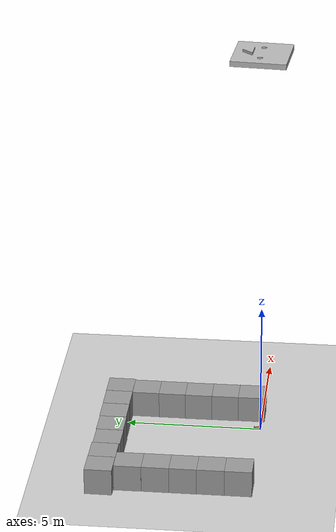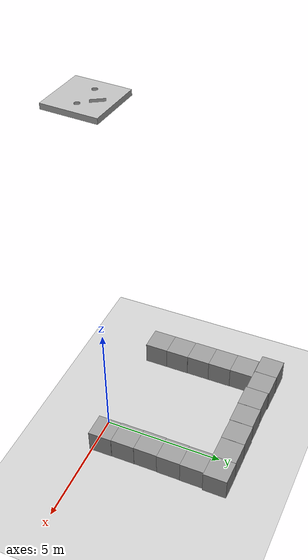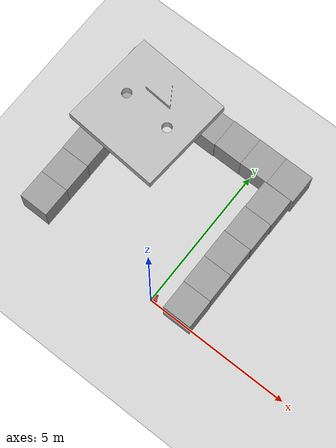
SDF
<sdf version="1.7">
 <world name="default">
  <model name="ground_plane">
   <static>1</static>
   <link name="link">
    <collision name="collision">
     <geometry><plane><normal>0 0 1</normal><size>100 100</size></plane></geometry>
     <surface>
      <contact><collide_bitmask>65535</collide_bitmask></contact>
      <friction><ode><mu>100</mu><mu2>50</mu2></ode></friction>
     </surface>
    </collision>
    <visual name="visual">
     <cast_shadows>0</cast_shadows>
     <geometry><plane><normal>0 0 1</normal><size>100 100</size></plane></geometry>
     <material>
      <script><uri>file://media/materials/scripts/gazebo.material</uri><name>Gazebo/Grey</name></script>
     </material>
    </visual>
   </link>
  </model>
  <model name="kiwi">
   <link name="base_footprint">
    <inertial>
     <pose>0 0 0.014673 0 -0 0</pose>
     <mass>1.001</mass>
     <inertia>
      <ixx>0.00250855</ixx>
      <ixy>0</ixy>
      <ixz>0</ixz>
      <iyy>0.00250855</iyy>
      <iyz>-9.94104e-10</iyz>
      <izz>0.00500042</izz>
     </inertia>
    </inertial>
    <collision name="base_footprint_fixed_joint_lump__base_link_collision">
     <pose>0 0 0.014667 0 -0 0</pose>
     <geometry>
      <mesh><scale>1 1 1</scale><uri>/home/syed/myros_ws/src/kiwi_drive/meshes/kiwibasev4_scaled.stl</uri></mesh>
     </geometry>
    </collision>
    <collision name="base_footprint_fixed_joint_lump__imu_link_collision_1">
     <pose>0 0 0.019667 0 -0 0</pose>
     <geometry>
      <mesh><scale>1 1 1</scale><uri>/home/syed/myros_ws/src/kiwi_drive/meshes/imuorigin_scaled.stl</uri></mesh>
     </geometry>
    </collision>
    <visual name="base_footprint_fixed_joint_lump__base_link_visual">
     <pose>0 0 0.014667 0 -0 0</pose>
     <geometry>
      <mesh><scale>1 1 1</scale><uri>/home/syed/myros_ws/src/kiwi_drive/meshes/kiwibasev4_scaled.stl</uri></mesh>
     </geometry>
     <material>
      <script><name>Gazebo/Red</name><uri>file://media/materials/scripts/gazebo.material</uri></script>
     </material>
    </visual>
    <visual name="base_footprint_fixed_joint_lump__imu_link_visual_1">
     <pose>0 0 0.019667 0 -0 0</pose>
     <geometry>
      <mesh><scale>1 1 1</scale><uri>/home/syed/myros_ws/src/kiwi_drive/meshes/imuorigin_scaled.stl</uri></mesh>
     </geometry>
    </visual>
   </link>
   <joint name="wheel_back_joint" type="revolute">
    <pose relative_to="base_footprint">0.00033 0.102067 0.029334 -1.57075 0 0</pose>
    <parent>base_footprint</parent>
    <child>wheel_back_link</child>
    <axis>
     <xyz>0 0 1</xyz>
     <limit><effort>1</effort><velocity>100</velocity><lower>-1e+16</lower><upper>1e+16</upper></limit>
     <dynamics>
      <damping>0</damping>
      <friction>0.6</friction>
      <spring_reference>0</spring_reference>
      <spring_stiffness>0</spring_stiffness>
     </dynamics>
    </axis>
   </joint>
   <link name="wheel_back_link">
    <pose relative_to="wheel_back_joint">0 0 0 0 -0 0</pose>
    <inertial>
     <pose>0 0 0.015 0 -0 0</pose>
     <mass>0.64933</mass>
     <inertia>
      <ixx>0.000137526</ixx>
      <ixy>0</ixy>
      <ixz>-4.40457e-22</ixz>
      <iyy>0.000137529</iyy>
      <iyz>1.79196e-10</iyz>
      <izz>0.00019022</izz>
     </inertia>
    </inertial>
    <collision name="wheel_back_link_collision">
     <geometry>
      <mesh>
       <scale>1 1 1</scale>
       <uri>/home/syed/myros_ws/src/kiwi_drive/meshes/omniwheelorigin_scaled.stl</uri>
      </mesh>
     </geometry>
    </collision>
    <collision name="wheel_back_link_fixed_joint_lump__back_castor_10_link_collision_1">
     <pose>0.022882 -0.007435 0.021 0 -0 1.25642</pose>
     <geometry>
      <mesh>
       <scale>1 1 1</scale>
       <uri>/home/syed/myros_ws/src/kiwi_drive/meshes/omniwheelcastororigin_scaled.stl</uri>
      </mesh>
     </geometry>
    </collision>
    <collision name="wheel_back_link_fixed_joint_lump__back_castor_1_link_collision_2">
     <pose>0 0.024059 0.009 0 -0 0</pose>
     <geometry>
      <mesh>
       <scale>1 1 1</scale>
       <uri>/home/syed/myros_ws/src/kiwi_drive/meshes/omniwheelcastororigin_scaled.stl</uri>
      </mesh>
     </geometry>
    </collision>
    <collision name="wheel_back_link_fixed_joint_lump__back_castor_2_link_collision_3">
     <pose>0.022882 0.007435 0.009 0 -0 1.8849</pose>
     <geometry>
      <mesh>
       <scale>1 1 1</scale>
       <uri>/home/syed/myros_ws/src/kiwi_drive/meshes/omniwheelcastororigin_scaled.stl</uri>
      </mesh>
     </geometry>
    </collision>
    <collision name="wheel_back_link_fixed_joint_lump__back_castor_3_link_collision_4">
     <pose>0.014142 -0.019464 0.009 0 0 -2.51338</pose>
     <geometry>
      <mesh>
       <scale>1 1 1</scale>
       <uri>/home/syed/myros_ws/src/kiwi_drive/meshes/omniwheelcastororigin_scaled.stl</uri>
      </mesh>
     </geometry>
    </collision>
    <collision name="wheel_back_link_fixed_joint_lump__back_castor_4_link_collision_5">
     <pose>-0.014142 -0.019464 0.009 0 0 -0.628485</pose>
     <geometry>
      <mesh>
       <scale>1 1 1</scale>
       <uri>/home/syed/myros_ws/src/kiwi_drive/meshes/omniwheelcastororigin_scaled.stl</uri>
      </mesh>
     </geometry>
    </collision>
    <collision name="wheel_back_link_fixed_joint_lump__back_castor_5_link_collision_6">
     <pose>-0.022882 0.007435 0.009 0 -0 1.25642</pose>
     <geometry>
      <mesh>
       <scale>1 1 1</scale>
       <uri>/home/syed/myros_ws/src/kiwi_drive/meshes/omniwheelcastororigin_scaled.stl</uri>
      </mesh>
     </geometry>
    </collision>
    <collision name="wheel_back_link_fixed_joint_lump__back_castor_6_link_collision_7">
     <pose>0 -0.024059 0.021 0 -0 0</pose>
     <geometry>
      <mesh>
       <scale>1 1 1</scale>
       <uri>/home/syed/myros_ws/src/kiwi_drive/meshes/omniwheelcastororigin_scaled.stl</uri>
      </mesh>
     </geometry>
    </collision>
    <collision name="wheel_back_link_fixed_joint_lump__back_castor_7_link_collision_8">
     <pose>-0.022882 -0.007435 0.021 0 -0 1.8849</pose>
     <geometry>
      <mesh>
       <scale>1 1 1</scale>
       <uri>/home/syed/myros_ws/src/kiwi_drive/meshes/omniwheelcastororigin_scaled.stl</uri>
      </mesh>
     </geometry>
    </collision>
    <collision name="wheel_back_link_fixed_joint_lump__back_castor_8_link_collision_9">
     <pose>-0.014142 0.019464 0.021 0 0 -2.51338</pose>
     <geometry>
      <mesh>
       <scale>1 1 1</scale>
       <uri>/home/syed/myros_ws/src/kiwi_drive/meshes/omniwheelcastororigin_scaled.stl</uri>
      </mesh>
     </geometry>
    </collision>
    <collision name="wheel_back_link_fixed_joint_lump__back_castor_9_link_collision_10">
     <pose>0.014142 0.019464 0.021 0 0 -0.628485</pose>
     <geometry>
      <mesh>
       <scale>1 1 1</scale>
       <uri>/home/syed/myros_ws/src/kiwi_drive/meshes/omniwheelcastororigin_scaled.stl</uri>
      </mesh>
     </geometry>
    </collision>
    <visual name="wheel_back_link_visual">
     <geometry>
      <mesh>
       <scale>1 1 1</scale>
       <uri>/home/syed/myros_ws/src/kiwi_drive/meshes/omniwheelorigin_scaled.stl</uri>
      </mesh>
     </geometry>
     <material>
      <script><name>Gazebo/LightGrey</name><uri>file://media/materials/scripts/gazebo.material</uri></script>
     </material>
    </visual>
    <visual name="wheel_back_link_fixed_joint_lump__back_castor_10_link_visual_1">
     <pose>0.022882 -0.007435 0.021 0 -0 1.25642</pose>
     <geometry>
      <mesh>
       <scale>1 1 1</scale>
       <uri>/home/syed/myros_ws/src/kiwi_drive/meshes/omniwheelcastororigin_scaled.stl</uri>
      </mesh>
     </geometry>
     <material>
      <script><name>Gazebo/Black</name><uri>file://media/materials/scripts/gazebo.material</uri></script>
     </material>
    </visual>
    <visual name="wheel_back_link_fixed_joint_lump__back_castor_1_link_visual_2">
     <pose>0 0.024059 0.009 0 -0 0</pose>
     <geometry>
      <mesh>
       <scale>1 1 1</scale>
       <uri>/home/syed/myros_ws/src/kiwi_drive/meshes/omniwheelcastororigin_scaled.stl</uri>
      </mesh>
     </geometry>
     <material>
      <script><name>Gazebo/Black</name><uri>file://media/materials/scripts/gazebo.material</uri></script>
     </material>
    </visual>
    <visual name="wheel_back_link_fixed_joint_lump__back_castor_2_link_visual_3">
     <pose>0.022882 0.007435 0.009 0 -0 1.8849</pose>
     <geometry>
      <mesh>
       <scale>1 1 1</scale>
       <uri>/home/syed/myros_ws/src/kiwi_drive/meshes/omniwheelcastororigin_scaled.stl</uri>
      </mesh>
     </geometry>
     <material>
      <script><name>Gazebo/Black</name><uri>file://media/materials/scripts/gazebo.material</uri></script>
     </material>
    </visual>
    <visual name="wheel_back_link_fixed_joint_lump__back_castor_3_link_visual_4">
     <pose>0.014142 -0.019464 0.009 0 0 -2.51338</pose>
     <geometry>
      <mesh>
       <scale>1 1 1</scale>
       <uri>/home/syed/myros_ws/src/kiwi_drive/meshes/omniwheelcastororigin_scaled.stl</uri>
      </mesh>
     </geometry>
     <material>
      <script><name>Gazebo/Black</name><uri>file://media/materials/scripts/gazebo.material</uri></script>
     </material>
    </visual>
    <visual name="wheel_back_link_fixed_joint_lump__back_castor_4_link_visual_5">
     <pose>-0.014142 -0.019464 0.009 0 0 -0.628485</pose>
     <geometry>
      <mesh>
       <scale>1 1 1</scale>
       <uri>/home/syed/myros_ws/src/kiwi_drive/meshes/omniwheelcastororigin_scaled.stl</uri>
      </mesh>
     </geometry>
     <material>
      <script><name>Gazebo/Black</name><uri>file://media/materials/scripts/gazebo.material</uri></script>
     </material>
    </visual>
    <visual name="wheel_back_link_fixed_joint_lump__back_castor_5_link_visual_6">
     <pose>-0.022882 0.007435 0.009 0 -0 1.25642</pose>
     <geometry>
      <mesh>
       <scale>1 1 1</scale>
       <uri>/home/syed/myros_ws/src/kiwi_drive/meshes/omniwheelcastororigin_scaled.stl</uri>
      </mesh>
     </geometry>
     <material>
      <script><name>Gazebo/Black</name><uri>file://media/materials/scripts/gazebo.material</uri></script>
     </material>
    </visual>
    <visual name="wheel_back_link_fixed_joint_lump__back_castor_6_link_visual_7">
     <pose>0 -0.024059 0.021 0 -0 0</pose>
     <geometry>
      <mesh>
       <scale>1 1 1</scale>
       <uri>/home/syed/myros_ws/src/kiwi_drive/meshes/omniwheelcastororigin_scaled.stl</uri>
      </mesh>
     </geometry>
     <material>
      <script><name>Gazebo/Black</name><uri>file://media/materials/scripts/gazebo.material</uri></script>
     </material>
    </visual>
    <visual name="wheel_back_link_fixed_joint_lump__back_castor_7_link_visual_8">
     <pose>-0.022882 -0.007435 0.021 0 -0 1.8849</pose>
     <geometry>
      <mesh>
       <scale>1 1 1</scale>
       <uri>/home/syed/myros_ws/src/kiwi_drive/meshes/omniwheelcastororigin_scaled.stl</uri>
      </mesh>
     </geometry>
     <material>
      <script><name>Gazebo/Black</name><uri>file://media/materials/scripts/gazebo.material</uri></script>
     </material>
    </visual>
    <visual name="wheel_back_link_fixed_joint_lump__back_castor_8_link_visual_9">
     <pose>-0.014142 0.019464 0.021 0 0 -2.51338</pose>
     <geometry>
      <mesh>
       <scale>1 1 1</scale>
       <uri>/home/syed/myros_ws/src/kiwi_drive/meshes/omniwheelcastororigin_scaled.stl</uri>
      </mesh>
     </geometry>
     <material>
      <script><name>Gazebo/Black</name><uri>file://media/materials/scripts/gazebo.material</uri></script>
     </material>
    </visual>
    <visual name="wheel_back_link_fixed_joint_lump__back_castor_9_link_visual_10">
     <pose>0.014142 0.019464 0.021 0 0 -0.628485</pose>
     <geometry>
      <mesh>
       <scale>1 1 1</scale>
       <uri>/home/syed/myros_ws/src/kiwi_drive/meshes/omniwheelcastororigin_scaled.stl</uri>
      </mesh>
     </geometry>
     <material>
      <script><name>Gazebo/Black</name><uri>file://media/materials/scripts/gazebo.material</uri></script>
     </material>
    </visual>
   </link>
   <joint name="wheel_left_joint" type="revolute">
    <pose relative_to="base_footprint">0.088263 -0.050237 0.029334 1.57075 0 1.04717</pose>
    <parent>base_footprint</parent>
    <child>wheel_left_link</child>
    <axis>
     <xyz>0 0 1</xyz>
     <limit><effort>1</effort><velocity>100</velocity><lower>-1e+16</lower><upper>1e+16</upper></limit>
     <dynamics>
      <damping>0</damping>
      <friction>0.6</friction>
      <spring_reference>0</spring_reference>
      <spring_stiffness>0</spring_stiffness>
     </dynamics>
    </axis>
   </joint>
   <link name="wheel_left_link">
    <pose relative_to="wheel_left_joint">0 0 0 0 -0 0</pose>
    <inertial>
     <pose>0 0 0.015 0 -0 0</pose>
     <mass>0.64933</mass>
     <inertia>
      <ixx>0.000137526</ixx>
      <ixy>0</ixy>
      <ixz>-4.40457e-22</ixz>
      <iyy>0.000137529</iyy>
      <iyz>1.79196e-10</iyz>
      <izz>0.00019022</izz>
     </inertia>
    </inertial>
    <collision name="wheel_left_link_collision">
     <geometry>
      <mesh>
       <scale>1 1 1</scale>
       <uri>/home/syed/myros_ws/src/kiwi_drive/meshes/omniwheelorigin_scaled.stl</uri>
      </mesh>
     </geometry>
    </collision>
    <collision name="wheel_left_link_fixed_joint_lump__left_castor_10_link_collision_1">
     <pose>0.022882 -0.007435 0.021 0 -0 1.25642</pose>
     <geometry>
      <mesh>
       <scale>1 1 1</scale>
       <uri>/home/syed/myros_ws/src/kiwi_drive/meshes/omniwheelcastororigin_scaled.stl</uri>
      </mesh>
     </geometry>
    </collision>
    <collision name="wheel_left_link_fixed_joint_lump__left_castor_1_link_collision_2">
     <pose>0 0.024059 0.009 0 -0 0</pose>
     <geometry>
      <mesh>
       <scale>1 1 1</scale>
       <uri>/home/syed/myros_ws/src/kiwi_drive/meshes/omniwheelcastororigin_scaled.stl</uri>
      </mesh>
     </geometry>
    </collision>
    <collision name="wheel_left_link_fixed_joint_lump__left_castor_2_link_collision_3">
     <pose>0.022882 0.007435 0.009 0 -0 1.8849</pose>
     <geometry>
      <mesh>
       <scale>1 1 1</scale>
       <uri>/home/syed/myros_ws/src/kiwi_drive/meshes/omniwheelcastororigin_scaled.stl</uri>
      </mesh>
     </geometry>
    </collision>
    <collision name="wheel_left_link_fixed_joint_lump__left_castor_3_link_collision_4">
     <pose>0.014142 -0.019464 0.009 0 0 -2.51338</pose>
     <geometry>
      <mesh>
       <scale>1 1 1</scale>
       <uri>/home/syed/myros_ws/src/kiwi_drive/meshes/omniwheelcastororigin_scaled.stl</uri>
      </mesh>
     </geometry>
    </collision>
    <collision name="wheel_left_link_fixed_joint_lump__left_castor_4_link_collision_5">
     <pose>-0.014142 -0.019464 0.009 0 0 -0.628485</pose>
     <geometry>
      <mesh>
       <scale>1 1 1</scale>
       <uri>/home/syed/myros_ws/src/kiwi_drive/meshes/omniwheelcastororigin_scaled.stl</uri>
      </mesh>
     </geometry>
    </collision>
    <collision name="wheel_left_link_fixed_joint_lump__left_castor_5_link_collision_6">
     <pose>-0.022882 0.007435 0.009 0 -0 1.25642</pose>
     <geometry>
      <mesh>
       <scale>1 1 1</scale>
       <uri>/home/syed/myros_ws/src/kiwi_drive/meshes/omniwheelcastororigin_scaled.stl</uri>
      </mesh>
     </geometry>
    </collision>
    <collision name="wheel_left_link_fixed_joint_lump__left_castor_6_link_collision_7">
     <pose>0 -0.024059 0.021 0 -0 0</pose>
     <geometry>
      <mesh>
       <scale>1 1 1</scale>
       <uri>/home/syed/myros_ws/src/kiwi_drive/meshes/omniwheelcastororigin_scaled.stl</uri>
      </mesh>
     </geometry>
    </collision>
    <collision name="wheel_left_link_fixed_joint_lump__left_castor_7_link_collision_8">
     <pose>-0.022882 -0.007435 0.021 0 -0 1.8849</pose>
     <geometry>
      <mesh>
       <scale>1 1 1</scale>
       <uri>/home/syed/myros_ws/src/kiwi_drive/meshes/omniwheelcastororigin_scaled.stl</uri>
      </mesh>
     </geometry>
    </collision>
    <collision name="wheel_left_link_fixed_joint_lump__left_castor_8_link_collision_9">
     <pose>-0.014142 0.019464 0.021 0 0 -2.51338</pose>
     <geometry>
      <mesh>
       <scale>1 1 1</scale>
       <uri>/home/syed/myros_ws/src/kiwi_drive/meshes/omniwheelcastororigin_scaled.stl</uri>
      </mesh>
     </geometry>
    </collision>
    <collision name="wheel_left_link_fixed_joint_lump__left_castor_9_link_collision_10">
     <pose>0.014142 0.019464 0.021 0 0 -0.628485</pose>
     <geometry>
      <mesh>
       <scale>1 1 1</scale>
       <uri>/home/syed/myros_ws/src/kiwi_drive/meshes/omniwheelcastororigin_scaled.stl</uri>
      </mesh>
     </geometry>
    </collision>
    <visual name="wheel_left_link_visual">
     <geometry>
      <mesh>
       <scale>1 1 1</scale>
       <uri>/home/syed/myros_ws/src/kiwi_drive/meshes/omniwheelorigin_scaled.stl</uri>
      </mesh>
     </geometry>
     <material>
      <script><name>Gazebo/LightGrey</name><uri>file://media/materials/scripts/gazebo.material</uri></script>
     </material>
    </visual>
    <visual name="wheel_left_link_fixed_joint_lump__left_castor_10_link_visual_1">
     <pose>0.022882 -0.007435 0.021 0 -0 1.25642</pose>
     <geometry>
      <mesh>
       <scale>1 1 1</scale>
       <uri>/home/syed/myros_ws/src/kiwi_drive/meshes/omniwheelcastororigin_scaled.stl</uri>
      </mesh>
     </geometry>
     <material>
      <script><name>Gazebo/Black</name><uri>file://media/materials/scripts/gazebo.material</uri></script>
     </material>
    </visual>
    <visual name="wheel_left_link_fixed_joint_lump__left_castor_1_link_visual_2">
     <pose>0 0.024059 0.009 0 -0 0</pose>
     <geometry>
      <mesh>
       <scale>1 1 1</scale>
       <uri>/home/syed/myros_ws/src/kiwi_drive/meshes/omniwheelcastororigin_scaled.stl</uri>
      </mesh>
     </geometry>
     <material>
      <script><name>Gazebo/Black</name><uri>file://media/materials/scripts/gazebo.material</uri></script>
     </material>
    </visual>
    <visual name="wheel_left_link_fixed_joint_lump__left_castor_2_link_visual_3">
     <pose>0.022882 0.007435 0.009 0 -0 1.8849</pose>
     <geometry>
      <mesh>
       <scale>1 1 1</scale>
       <uri>/home/syed/myros_ws/src/kiwi_drive/meshes/omniwheelcastororigin_scaled.stl</uri>
      </mesh>
     </geometry>
     <material>
      <script><name>Gazebo/Black</name><uri>file://media/materials/scripts/gazebo.material</uri></script>
     </material>
    </visual>
    <visual name="wheel_left_link_fixed_joint_lump__left_castor_3_link_visual_4">
     <pose>0.014142 -0.019464 0.009 0 0 -2.51338</pose>
     <geometry>
      <mesh>
       <scale>1 1 1</scale>
       <uri>/home/syed/myros_ws/src/kiwi_drive/meshes/omniwheelcastororigin_scaled.stl</uri>
      </mesh>
     </geometry>
     <material>
      <script><name>Gazebo/Black</name><uri>file://media/materials/scripts/gazebo.material</uri></script>
     </material>
    </visual>
    <visual name="wheel_left_link_fixed_joint_lump__left_castor_4_link_visual_5">
     <pose>-0.014142 -0.019464 0.009 0 0 -0.628485</pose>
     <geometry>
      <mesh>
       <scale>1 1 1</scale>
       <uri>/home/syed/myros_ws/src/kiwi_drive/meshes/omniwheelcastororigin_scaled.stl</uri>
      </mesh>
     </geometry>
     <material>
      <script><name>Gazebo/Black</name><uri>file://media/materials/scripts/gazebo.material</uri></script>
     </material>
    </visual>
    <visual name="wheel_left_link_fixed_joint_lump__left_castor_5_link_visual_6">
     <pose>-0.022882 0.007435 0.009 0 -0 1.25642</pose>
     <geometry>
      <mesh>
       <scale>1 1 1</scale>
       <uri>/home/syed/myros_ws/src/kiwi_drive/meshes/omniwheelcastororigin_scaled.stl</uri>
      </mesh>
     </geometry>
     <material>
      <script><name>Gazebo/Black</name><uri>file://media/materials/scripts/gazebo.material</uri></script>
     </material>
    </visual>
    <visual name="wheel_left_link_fixed_joint_lump__left_castor_6_link_visual_7">
     <pose>0 -0.024059 0.021 0 -0 0</pose>
     <geometry>
      <mesh>
       <scale>1 1 1</scale>
       <uri>/home/syed/myros_ws/src/kiwi_drive/meshes/omniwheelcastororigin_scaled.stl</uri>
      </mesh>
     </geometry>
     <material>
      <script><name>Gazebo/Black</name><uri>file://media/materials/scripts/gazebo.material</uri></script>
     </material>
    </visual>
    <visual name="wheel_left_link_fixed_joint_lump__left_castor_7_link_visual_8">
     <pose>-0.022882 -0.007435 0.021 0 -0 1.8849</pose>
     <geometry>
      <mesh>
       <scale>1 1 1</scale>
       <uri>/home/syed/myros_ws/src/kiwi_drive/meshes/omniwheelcastororigin_scaled.stl</uri>
      </mesh>
     </geometry>
     <material>
      <script><name>Gazebo/Black</name><uri>file://media/materials/scripts/gazebo.material</uri></script>
     </material>
    </visual>
    <visual name="wheel_left_link_fixed_joint_lump__left_castor_8_link_visual_9">
     <pose>-0.014142 0.019464 0.021 0 0 -2.51338</pose>
     <geometry>
      <mesh>
       <scale>1 1 1</scale>
       <uri>/home/syed/myros_ws/src/kiwi_drive/meshes/omniwheelcastororigin_scaled.stl</uri>
      </mesh>
     </geometry>
     <material>
      <script><name>Gazebo/Black</name><uri>file://media/materials/scripts/gazebo.material</uri></script>
     </material>
    </visual>
    <visual name="wheel_left_link_fixed_joint_lump__left_castor_9_link_visual_10">
     <pose>0.014142 0.019464 0.021 0 0 -0.628485</pose>
     <geometry>
      <mesh>
       <scale>1 1 1</scale>
       <uri>/home/syed/myros_ws/src/kiwi_drive/meshes/omniwheelcastororigin_scaled.stl</uri>
      </mesh>
     </geometry>
     <material>
      <script><name>Gazebo/Black</name><uri>file://media/materials/scripts/gazebo.material</uri></script>
     </material>
    </visual>
   </link>
   <joint name="wheel_right_joint" type="revolute">
    <pose relative_to="base_footprint">-0.087603 -0.050237 0.029334 1.57075 -0 -1.04717</pose>
    <parent>base_footprint</parent>
    <child>wheel_right_link</child>
    <axis>
     <xyz>0 0 1</xyz>
     <limit><effort>1</effort><velocity>100</velocity><lower>-1e+16</lower><upper>1e+16</upper></limit>
     <dynamics>
      <damping>0</damping>
      <friction>0.6</friction>
      <spring_reference>0</spring_reference>
      <spring_stiffness>0</spring_stiffness>
     </dynamics>
    </axis>
   </joint>
   <link name="wheel_right_link">
    <pose relative_to="wheel_right_joint">0 0 0 0 -0 0</pose>
    <inertial>
     <pose>0 0 0.015 0 -0 0</pose>
     <mass>0.64933</mass>
     <inertia>
      <ixx>0.000137526</ixx>
      <ixy>0</ixy>
      <ixz>-4.40457e-22</ixz>
      <iyy>0.000137529</iyy>
      <iyz>1.79196e-10</iyz>
      <izz>0.00019022</izz>
     </inertia>
    </inertial>
    <collision name="wheel_right_link_collision">
     <geometry>
      <mesh>
       <scale>1 1 1</scale>
       <uri>/home/syed/myros_ws/src/kiwi_drive/meshes/omniwheelorigin_scaled.stl</uri>
      </mesh>
     </geometry>
    </collision>
    <collision name="wheel_right_link_fixed_joint_lump__right_castor_10_link_collision_1">
     <pose>0.022882 -0.007435 0.021 0 -0 1.25642</pose>
     <geometry>
      <mesh>
       <scale>1 1 1</scale>
       <uri>/home/syed/myros_ws/src/kiwi_drive/meshes/omniwheelcastororigin_scaled.stl</uri>
      </mesh>
     </geometry>
    </collision>
    <collision name="wheel_right_link_fixed_joint_lump__right_castor_1_link_collision_2">
     <pose>0 0.024059 0.009 0 -0 0</pose>
     <geometry>
      <mesh>
       <scale>1 1 1</scale>
       <uri>/home/syed/myros_ws/src/kiwi_drive/meshes/omniwheelcastororigin_scaled.stl</uri>
      </mesh>
     </geometry>
    </collision>
    <collision name="wheel_right_link_fixed_joint_lump__right_castor_2_link_collision_3">
     <pose>0.022882 0.007435 0.009 0 -0 1.8849</pose>
     <geometry>
      <mesh>
       <scale>1 1 1</scale>
       <uri>/home/syed/myros_ws/src/kiwi_drive/meshes/omniwheelcastororigin_scaled.stl</uri>
      </mesh>
     </geometry>
    </collision>
    <collision name="wheel_right_link_fixed_joint_lump__right_castor_3_link_collision_4">
     <pose>0.014142 -0.019464 0.009 0 0 -2.51338</pose>
     <geometry>
      <mesh>
       <scale>1 1 1</scale>
       <uri>/home/syed/myros_ws/src/kiwi_drive/meshes/omniwheelcastororigin_scaled.stl</uri>
      </mesh>
     </geometry>
    </collision>
    <collision name="wheel_right_link_fixed_joint_lump__right_castor_4_link_collision_5">
     <pose>-0.014142 -0.019464 0.009 0 0 -0.628485</pose>
     <geometry>
      <mesh>
       <scale>1 1 1</scale>
       <uri>/home/syed/myros_ws/src/kiwi_drive/meshes/omniwheelcastororigin_scaled.stl</uri>
      </mesh>
     </geometry>
    </collision>
    <collision name="wheel_right_link_fixed_joint_lump__right_castor_5_link_collision_6">
     <pose>-0.022882 0.007435 0.009 0 -0 1.25642</pose>
     <geometry>
      <mesh>
       <scale>1 1 1</scale>
       <uri>/home/syed/myros_ws/src/kiwi_drive/meshes/omniwheelcastororigin_scaled.stl</uri>
      </mesh>
     </geometry>
    </collision>
    <collision name="wheel_right_link_fixed_joint_lump__right_castor_6_link_collision_7">
     <pose>0 -0.024059 0.021 0 -0 0</pose>
     <geometry>
      <mesh>
       <scale>1 1 1</scale>
       <uri>/home/syed/myros_ws/src/kiwi_drive/meshes/omniwheelcastororigin_scaled.stl</uri>
      </mesh>
     </geometry>
    </collision>
    <collision name="wheel_right_link_fixed_joint_lump__right_castor_7_link_collision_8">
     <pose>-0.022882 -0.007435 0.021 0 -0 1.8849</pose>
     <geometry>
      <mesh>
       <scale>1 1 1</scale>
       <uri>/home/syed/myros_ws/src/kiwi_drive/meshes/omniwheelcastororigin_scaled.stl</uri>
      </mesh>
     </geometry>
    </collision>
    <collision name="wheel_right_link_fixed_joint_lump__right_castor_8_link_collision_9">
     <pose>-0.014142 0.019464 0.021 0 0 -2.51338</pose>
     <geometry>
      <mesh>
       <scale>1 1 1</scale>
       <uri>/home/syed/myros_ws/src/kiwi_drive/meshes/omniwheelcastororigin_scaled.stl</uri>
      </mesh>
     </geometry>
    </collision>
    <collision name="wheel_right_link_fixed_joint_lump__right_castor_9_link_collision_10">
     <pose>0.014142 0.019464 0.021 0 0 -0.628485</pose>
     <geometry>
      <mesh>
       <scale>1 1 1</scale>
       <uri>/home/syed/myros_ws/src/kiwi_drive/meshes/omniwheelcastororigin_scaled.stl</uri>
      </mesh>
     </geometry>
    </collision>
    <visual name="wheel_right_link_visual">
     <geometry>
      <mesh>
       <scale>1 1 1</scale>
       <uri>/home/syed/myros_ws/src/kiwi_drive/meshes/omniwheelorigin_scaled.stl</uri>
      </mesh>
     </geometry>
     <material>
      <script><name>Gazebo/LightGrey</name><uri>file://media/materials/scripts/gazebo.material</uri></script>
     </material>
    </visual>
    <visual name="wheel_right_link_fixed_joint_lump__right_castor_10_link_visual_1">
     <pose>0.022882 -0.007435 0.021 0 -0 1.25642</pose>
     <geometry>
      <mesh>
       <scale>1 1 1</scale>
       <uri>/home/syed/myros_ws/src/kiwi_drive/meshes/omniwheelcastororigin_scaled.stl</uri>
      </mesh>
     </geometry>
     <material>
      <script><name>Gazebo/Black</name><uri>file://media/materials/scripts/gazebo.material</uri></script>
     </material>
    </visual>
    <visual name="wheel_right_link_fixed_joint_lump__right_castor_1_link_visual_2">
     <pose>0 0.024059 0.009 0 -0 0</pose>
     <geometry>
      <mesh>
       <scale>1 1 1</scale>
       <uri>/home/syed/myros_ws/src/kiwi_drive/meshes/omniwheelcastororigin_scaled.stl</uri>
      </mesh>
     </geometry>
     <material>
      <script><name>Gazebo/Black</name><uri>file://media/materials/scripts/gazebo.material</uri></script>
     </material>
    </visual>
    <visual name="wheel_right_link_fixed_joint_lump__right_castor_2_link_visual_3">
     <pose>0.022882 0.007435 0.009 0 -0 1.8849</pose>
     <geometry>
      <mesh>
       <scale>1 1 1</scale>
       <uri>/home/syed/myros_ws/src/kiwi_drive/meshes/omniwheelcastororigin_scaled.stl</uri>
      </mesh>
     </geometry>
     <material>
      <script><name>Gazebo/Black</name><uri>file://media/materials/scripts/gazebo.material</uri></script>
     </material>
    </visual>
    <visual name="wheel_right_link_fixed_joint_lump__right_castor_3_link_visual_4">
     <pose>0.014142 -0.019464 0.009 0 0 -2.51338</pose>
     <geometry>
      <mesh>
       <scale>1 1 1</scale>
       <uri>/home/syed/myros_ws/src/kiwi_drive/meshes/omniwheelcastororigin_scaled.stl</uri>
      </mesh>
     </geometry>
     <material>
      <script><name>Gazebo/Black</name><uri>file://media/materials/scripts/gazebo.material</uri></script>
     </material>
    </visual>
    <visual name="wheel_right_link_fixed_joint_lump__right_castor_4_link_visual_5">
     <pose>-0.014142 -0.019464 0.009 0 0 -0.628485</pose>
     <geometry>
      <mesh>
       <scale>1 1 1</scale>
       <uri>/home/syed/myros_ws/src/kiwi_drive/meshes/omniwheelcastororigin_scaled.stl</uri>
      </mesh>
     </geometry>
     <material>
      <script><name>Gazebo/Black</name><uri>file://media/materials/scripts/gazebo.material</uri></script>
     </material>
    </visual>
    <visual name="wheel_right_link_fixed_joint_lump__right_castor_5_link_visual_6">
     <pose>-0.022882 0.007435 0.009 0 -0 1.25642</pose>
     <geometry>
      <mesh>
       <scale>1 1 1</scale>
       <uri>/home/syed/myros_ws/src/kiwi_drive/meshes/omniwheelcastororigin_scaled.stl</uri>
      </mesh>
     </geometry>
     <material>
      <script><name>Gazebo/Black</name><uri>file://media/materials/scripts/gazebo.material</uri></script>
     </material>
    </visual>
    <visual name="wheel_right_link_fixed_joint_lump__right_castor_6_link_visual_7">
     <pose>0 -0.024059 0.021 0 -0 0</pose>
     <geometry>
      <mesh>
       <scale>1 1 1</scale>
       <uri>/home/syed/myros_ws/src/kiwi_drive/meshes/omniwheelcastororigin_scaled.stl</uri>
      </mesh>
     </geometry>
     <material>
      <script><name>Gazebo/Black</name><uri>file://media/materials/scripts/gazebo.material</uri></script>
     </material>
    </visual>
    <visual name="wheel_right_link_fixed_joint_lump__right_castor_7_link_visual_8">
     <pose>-0.022882 -0.007435 0.021 0 -0 1.8849</pose>
     <geometry>
      <mesh>
       <scale>1 1 1</scale>
       <uri>/home/syed/myros_ws/src/kiwi_drive/meshes/omniwheelcastororigin_scaled.stl</uri>
      </mesh>
     </geometry>
     <material>
      <script><name>Gazebo/Black</name><uri>file://media/materials/scripts/gazebo.material</uri></script>
     </material>
    </visual>
    <visual name="wheel_right_link_fixed_joint_lump__right_castor_8_link_visual_9">
     <pose>-0.014142 0.019464 0.021 0 0 -2.51338</pose>
     <geometry>
      <mesh>
       <scale>1 1 1</scale>
       <uri>/home/syed/myros_ws/src/kiwi_drive/meshes/omniwheelcastororigin_scaled.stl</uri>
      </mesh>
     </geometry>
     <material>
      <script><name>Gazebo/Black</name><uri>file://media/materials/scripts/gazebo.material</uri></script>
     </material>
    </visual>
    <visual name="wheel_right_link_fixed_joint_lump__right_castor_9_link_visual_10">
     <pose>0.014142 0.019464 0.021 0 0 -0.628485</pose>
     <geometry>
      <mesh>
       <scale>1 1 1</scale>
       <uri>/home/syed/myros_ws/src/kiwi_drive/meshes/omniwheelcastororigin_scaled.stl</uri>
      </mesh>
     </geometry>
     <material>
      <script><name>Gazebo/Black</name><uri>file://media/materials/scripts/gazebo.material</uri></script>
     </material>
    </visual>
   </link>
   <static>0</static>
   <plugin name="gazebo_ros_control" filename="libgazebo_ros_control.so">
    <robotNamespace>/</robotNamespace>
   </plugin>
   <plugin name="WheelSlipPlugin" filename="libWheelSlipPlugin.so">
    <wheel link_name="wheel_back_link">
     <slip_compliance_lateral>0.0</slip_compliance_lateral>
     <slip_compliance_longitudinal>0.1</slip_compliance_longitudinal>
     <wheel_normal_force>100</wheel_normal_force>
     <wheel_radius>0.014667</wheel_radius>
    </wheel>
    <wheel link_name="wheel_left_link">
     <slip_compliance_lateral>0.0</slip_compliance_lateral>
     <slip_compliance_longitudinal>0.1</slip_compliance_longitudinal>
     <wheel_normal_force>100</wheel_normal_force>
     <wheel_radius>0.014667</wheel_radius>
    </wheel>
    <wheel link_name="wheel_right_link">
     <slip_compliance_lateral>0.0</slip_compliance_lateral>
     <slip_compliance_longitudinal>0.1</slip_compliance_longitudinal>
     <wheel_normal_force>100</wheel_normal_force>
     <wheel_radius>0.014667</wheel_radius>
    </wheel>
    <robotNamespace>/</robotNamespace>
   </plugin>
   <pose>0.068192 0.12615 0.001009 0.000398 -0.000246 -0.073608</pose>
  </model>
  <model name="unit_box_6">
   <pose>1.06602 0.397151 0.499995 0 1e-05 0.00065</pose>
   <link name="link">
    <inertial>
     <mass>1</mass>
     <inertia>
      <ixx>0.166667</ixx>
      <ixy>0</ixy>
      <ixz>0</ixz>
      <iyy>0.166667</iyy>
      <iyz>0</iyz>
      <izz>0.166667</izz>
     </inertia>
    </inertial>
    <collision name="collision"><geometry><box><size>1 1 1</size></box></geometry></collision>
    <visual name="visual">
     <geometry><box><size>1 1 1</size></box></geometry>
     <material>
      <script><name>Gazebo/Grey</name><uri>file://media/materials/scripts/gazebo.material</uri></script>
     </material>
    </visual>
   </link>
  </model>
  <model name="unit_box_7">
   <pose>1.05421 1.39715 0.5 0 -0 0.000657</pose>
   <link name="link">
    <inertial>
     <mass>1</mass>
     <inertia>
      <ixx>0.166667</ixx>
      <ixy>0</ixy>
      <ixz>0</ixz>
      <iyy>0.166667</iyy>
      <iyz>0</iyz>
      <izz>0.166667</izz>
     </inertia>
    </inertial>
    <collision name="collision"><geometry><box><size>1 1 1</size></box></geometry></collision>
    <visual name="visual">
     <geometry><box><size>1 1 1</size></box></geometry>
     <material>
      <script><name>Gazebo/Grey</name><uri>file://media/materials/scripts/gazebo.material</uri></script>
     </material>
    </visual>
   </link>
  </model>
  <model name="unit_box_8">
   <pose>1.04855 2.39715 0.499995 9e-06 -0 0.000657</pose>
   <link name="link">
    <inertial>
     <mass>1</mass>
     <inertia>
      <ixx>0.166667</ixx>
      <ixy>0</ixy>
      <ixz>0</ixz>
      <iyy>0.166667</iyy>
      <iyz>0</iyz>
      <izz>0.166667</izz>
     </inertia>
    </inertial>
    <collision name="collision"><geometry><box><size>1 1 1</size></box></geometry></collision>
    <visual name="visual">
     <geometry><box><size>1 1 1</size></box></geometry>
     <material>
      <script><name>Gazebo/Grey</name><uri>file://media/materials/scripts/gazebo.material</uri></script>
     </material>
    </visual>
   </link>
  </model>
  <model name="unit_box_9">
   <pose>1.06122 3.39717 0.499995 -1e-05 0 0.000665</pose>
   <link name="link">
    <inertial>
     <mass>1</mass>
     <inertia>
      <ixx>0.166667</ixx>
      <ixy>0</ixy>
      <ixz>0</ixz>
      <iyy>0.166667</iyy>
      <iyz>0</iyz>
      <izz>0.166667</izz>
     </inertia>
    </inertial>
    <collision name="collision"><geometry><box><size>1 1 1</size></box></geometry></collision>
    <visual name="visual">
     <geometry><box><size>1 1 1</size></box></geometry>
     <material>
      <script><name>Gazebo/Grey</name><uri>file://media/materials/scripts/gazebo.material</uri></script>
     </material>
    </visual>
   </link>
  </model>
  <model name="unit_box_10">
   <pose>1.07212 4.39717 0.499995 1e-05 -0 0.000674</pose>
   <link name="link">
    <inertial>
     <mass>1</mass>
     <inertia>
      <ixx>0.166667</ixx>
      <ixy>0</ixy>
      <ixz>0</ixz>
      <iyy>0.166667</iyy>
      <iyz>0</iyz>
      <izz>0.166667</izz>
     </inertia>
    </inertial>
    <collision name="collision"><geometry><box><size>1 1 1</size></box></geometry></collision>
    <visual name="visual">
     <geometry><box><size>1 1 1</size></box></geometry>
     <material>
      <script><name>Gazebo/Grey</name><uri>file://media/materials/scripts/gazebo.material</uri></script>
     </material>
    </visual>
   </link>
  </model>
  <model name="unit_box_11">
   <pose>1.14194 5.40063 0.499995 0 -1e-05 -0.007198</pose>
   <link name="link">
    <inertial>
     <mass>1</mass>
     <inertia>
      <ixx>0.166667</ixx>
      <ixy>0</ixy>
      <ixz>0</ixz>
      <iyy>0.166667</iyy>
      <iyz>0</iyz>
      <izz>0.166667</izz>
     </inertia>
    </inertial>
    <collision name="collision"><geometry><box><size>1 1 1</size></box></geometry></collision>
    <visual name="visual">
     <geometry><box><size>1 1 1</size></box></geometry>
     <material>
      <script><name>Gazebo/Grey</name><uri>file://media/materials/scripts/gazebo.material</uri></script>
     </material>
    </visual>
   </link>
  </model>
  <model name="unit_box_12">
   <pose>0.141346 5.39994 0.499995 -1e-05 0 -0.006099</pose>
   <link name="link">
    <inertial>
     <mass>1</mass>
     <inertia>
      <ixx>0.166667</ixx>
      <ixy>0</ixy>
      <ixz>0</ixz>
      <iyy>0.166667</iyy>
      <iyz>0</iyz>
      <izz>0.166667</izz>
     </inertia>
    </inertial>
    <collision name="collision"><geometry><box><size>1 1 1</size></box></geometry></collision>
    <visual name="visual">
     <geometry><box><size>1 1 1</size></box></geometry>
     <material>
      <script><name>Gazebo/Grey</name><uri>file://media/materials/scripts/gazebo.material</uri></script>
     </material>
    </visual>
   </link>
  </model>
  <model name="unit_box_13">
   <pose>-0.85992 5.39991 0.499995 0 -1e-05 -0.008577</pose>
   <link name="link">
    <inertial>
     <mass>1</mass>
     <inertia>
      <ixx>0.166667</ixx>
      <ixy>0</ixy>
      <ixz>0</ixz>
      <iyy>0.166667</iyy>
      <iyz>0</iyz>
      <izz>0.166667</izz>
     </inertia>
    </inertial>
    <collision name="collision"><geometry><box><size>1 1 1</size></box></geometry></collision>
    <visual name="visual">
     <geometry><box><size>1 1 1</size></box></geometry>
     <material>
      <script><name>Gazebo/Grey</name><uri>file://media/materials/scripts/gazebo.material</uri></script>
     </material>
    </visual>
   </link>
  </model>
  <model name="unit_box_14">
   <pose>-1.86082 5.38911 0.5 0 0 -0.010103</pose>
   <link name="link">
    <inertial>
     <mass>1</mass>
     <inertia>
      <ixx>0.166667</ixx>
      <ixy>0</ixy>
      <ixz>0</ixz>
      <iyy>0.166667</iyy>
      <iyz>0</iyz>
      <izz>0.166667</izz>
     </inertia>
    </inertial>
    <collision name="collision"><geometry><box><size>1 1 1</size></box></geometry></collision>
    <visual name="visual">
     <geometry><box><size>1 1 1</size></box></geometry>
     <material>
      <script><name>Gazebo/Grey</name><uri>file://media/materials/scripts/gazebo.material</uri></script>
     </material>
    </visual>
   </link>
  </model>
  <model name="unit_box_15">
   <pose>-4.49578 0.430792 0.5 0 -0 -0.003357</pose>
   <link name="link">
    <inertial>
     <mass>1</mass>
     <inertia>
      <ixx>0.166667</ixx>
      <ixy>0</ixy>
      <ixz>0</ixz>
      <iyy>0.166667</iyy>
      <iyz>0</iyz>
      <izz>0.166667</izz>
     </inertia>
    </inertial>
    <collision name="collision"><geometry><box><size>1 1 1</size></box></geometry></collision>
    <visual name="visual">
     <geometry><box><size>1 1 1</size></box></geometry>
     <material>
      <script><name>Gazebo/Grey</name><uri>file://media/materials/scripts/gazebo.material</uri></script>
     </material>
    </visual>
   </link>
  </model>
  <model name="unit_box_16">
   <pose>-4.49218 1.43082 0.5 0 0 -0.003418</pose>
   <link name="link">
    <inertial>
     <mass>1</mass>
     <inertia>
      <ixx>0.166667</ixx>
      <ixy>0</ixy>
      <ixz>0</ixz>
      <iyy>0.166667</iyy>
      <iyz>0</iyz>
      <izz>0.166667</izz>
     </inertia>
    </inertial>
    <collision name="collision"><geometry><box><size>1 1 1</size></box></geometry></collision>
    <visual name="visual">
     <geometry><box><size>1 1 1</size></box></geometry>
     <material>
      <script><name>Gazebo/Grey</name><uri>file://media/materials/scripts/gazebo.material</uri></script>
     </material>
    </visual>
   </link>
  </model>
  <model name="unit_box_17">
   <pose>-4.49701 2.43102 0.5 0 0 -0.003772</pose>
   <link name="link">
    <inertial>
     <mass>1</mass>
     <inertia>
      <ixx>0.166667</ixx>
      <ixy>0</ixy>
      <ixz>0</ixz>
      <iyy>0.166667</iyy>
      <iyz>0</iyz>
      <izz>0.166667</izz>
     </inertia>
    </inertial>
    <collision name="collision"><geometry><box><size>1 1 1</size></box></geometry></collision>
    <visual name="visual">
     <geometry><box><size>1 1 1</size></box></geometry>
     <material>
      <script><name>Gazebo/Grey</name><uri>file://media/materials/scripts/gazebo.material</uri></script>
     </material>
    </visual>
   </link>
  </model>
  <model name="unit_box_18">
   <pose>-4.49404 3.43102 0.499995 0 -1e-05 -0.003781</pose>
   <link name="link">
    <inertial>
     <mass>1</mass>
     <inertia>
      <ixx>0.166667</ixx>
      <ixy>0</ixy>
      <ixz>0</ixz>
      <iyy>0.166667</iyy>
      <iyz>0</iyz>
      <izz>0.166667</izz>
     </inertia>
    </inertial>
    <collision name="collision"><geometry><box><size>1 1 1</size></box></geometry></collision>
    <visual name="visual">
     <geometry><box><size>1 1 1</size></box></geometry>
     <material>
      <script><name>Gazebo/Grey</name><uri>file://media/materials/scripts/gazebo.material</uri></script>
     </material>
    </visual>
   </link>
  </model>
  <model name="unit_box_19">
   <pose>-4.49727 4.43104 0.499995 0 1e-05 -0.003788</pose>
   <link name="link">
    <inertial>
     <mass>1</mass>
     <inertia>
      <ixx>0.166667</ixx>
      <ixy>0</ixy>
      <ixz>0</ixz>
      <iyy>0.166667</iyy>
      <iyz>0</iyz>
      <izz>0.166667</izz>
     </inertia>
    </inertial>
    <collision name="collision"><geometry><box><size>1 1 1</size></box></geometry></collision>
    <visual name="visual">
     <geometry><box><size>1 1 1</size></box></geometry>
     <material>
      <script><name>Gazebo/Grey</name><uri>file://media/materials/scripts/gazebo.material</uri></script>
     </material>
    </visual>
   </link>
  </model>
  <model name="unit_box_20">
   <pose>-4.86167 5.44344 0.499995 1e-05 -0 -0.011774</pose>
   <link name="link">
    <inertial>
     <mass>1</mass>
     <inertia>
      <ixx>0.166667</ixx>
      <ixy>0</ixy>
      <ixz>0</ixz>
      <iyy>0.166667</iyy>
      <iyz>0</iyz>
      <izz>0.166667</izz>
     </inertia>
    </inertial>
    <collision name="collision"><geometry><box><size>1 1 1</size></box></geometry></collision>
    <visual name="visual">
     <geometry><box><size>1 1 1</size></box></geometry>
     <material>
      <script><name>Gazebo/Grey</name><uri>file://media/materials/scripts/gazebo.material</uri></script>
     </material>
    </visual>
   </link>
  </model>
  <model name="unit_box_21">
   <pose>-2.86182 5.38339 0.5 -0 -0 -0.011879</pose>
   <link name="link">
    <inertial>
     <mass>1</mass>
     <inertia>
      <ixx>0.166667</ixx>
      <ixy>0</ixy>
      <ixz>0</ixz>
      <iyy>0.166667</iyy>
      <iyz>0</iyz>
      <izz>0.166667</izz>
     </inertia>
    </inertial>
    <collision name="collision"><geometry><box><size>1 1 1</size></box></geometry></collision>
    <visual name="visual">
     <geometry><box><size>1 1 1</size></box></geometry>
     <material>
      <script><name>Gazebo/Grey</name><uri>file://media/materials/scripts/gazebo.material</uri></script>
     </material>
    </visual>
   </link>
  </model>
  <model name="unit_box_22">
   <pose>-3.86144 5.42757 0.499995 0 -1e-05 -0.012034</pose>
   <link name="link">
    <inertial>
     <mass>1</mass>
     <inertia>
      <ixx>0.166667</ixx>
      <ixy>0</ixy>
      <ixz>0</ixz>
      <iyy>0.166667</iyy>
      <iyz>0</iyz>
      <izz>0.166667</izz>
     </inertia>
    </inertial>
    <collision name="collision"><geometry><box><size>1 1 1</size></box></geometry></collision>
    <visual name="visual">
     <geometry><box><size>1 1 1</size></box></geometry>
     <material>
      <script><name>Gazebo/Grey</name><uri>file://media/materials/scripts/gazebo.material</uri></script>
     </material>
    </visual>
   </link>
  </model>
 </world>
</sdf>
